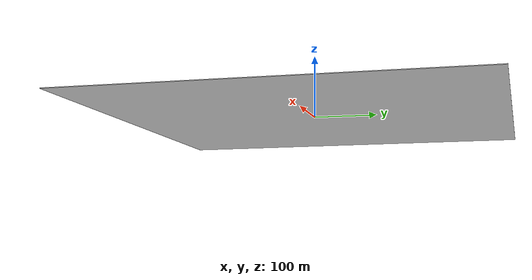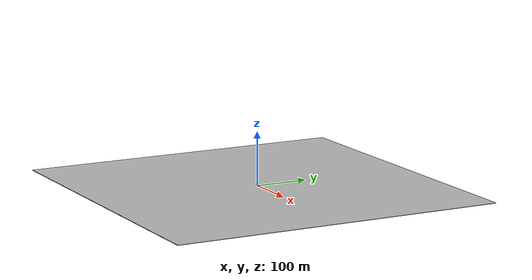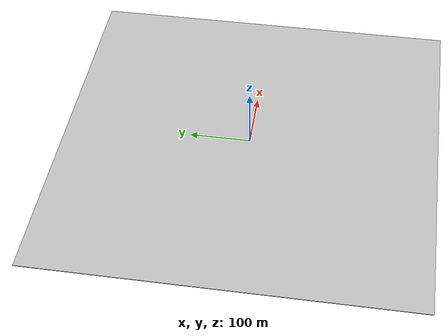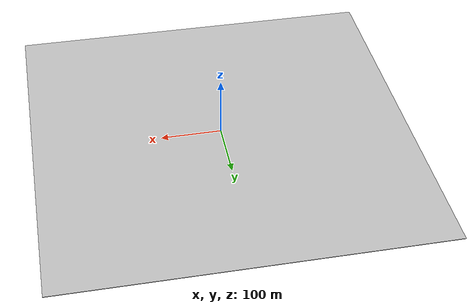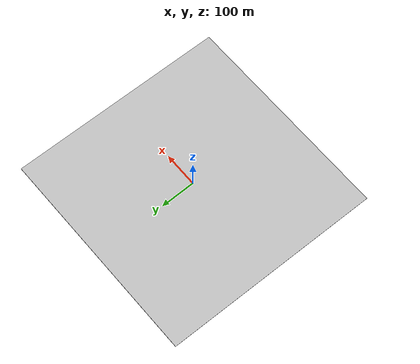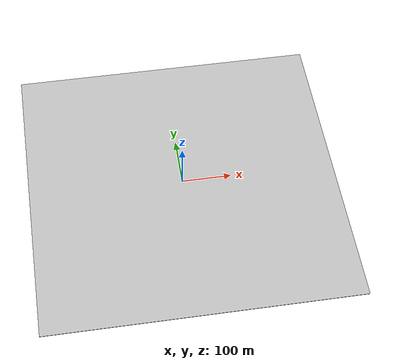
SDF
<sdf version='1.6'>
<model name='map_hybrid_35.688987_140.02092_100_100'>
  <static>true</static>
  <link name='link'>
    <collision name='collision'>
      <pose>0 0 -0.5 0 0 0</pose>
      <geometry>
        <box>
          <size>620.818 620.818 1</size>
        </box>
      </geometry>
    </collision>
    <visual name='visual0_0'>
      <pose>0 0 -0.5 0 0 1.5708</pose>
      <geometry>
        <box>
          <size>620.818 620.818 1</size>
        </box>
      </geometry>
      <material>
        <script>
          <uri>model://map_hybrid_35.688987_140.02092_100_100/materials/scripts</uri>
          <uri>model://map_hybrid_35.688987_140.02092_100_100/materials/textures</uri>
          <name>map_hybrid_35.688987_140.02092_100_100/0_0</name>
        </script>
      </material>
    </visual>
  </link>
</model>
</sdf>
